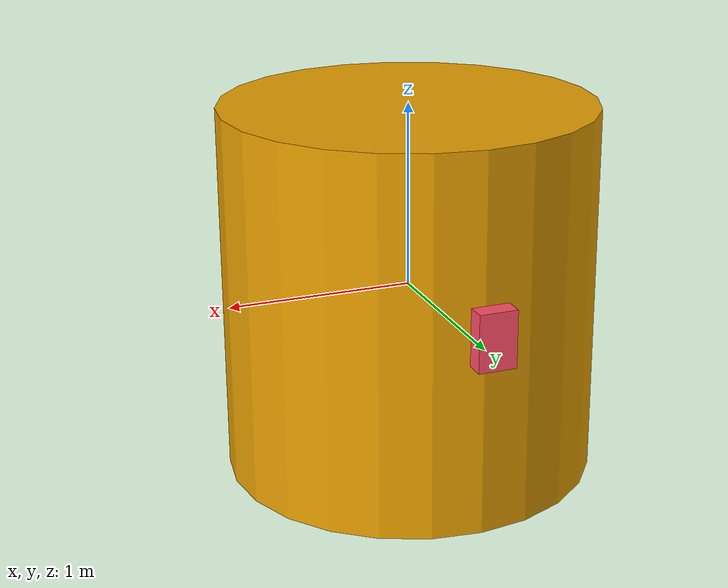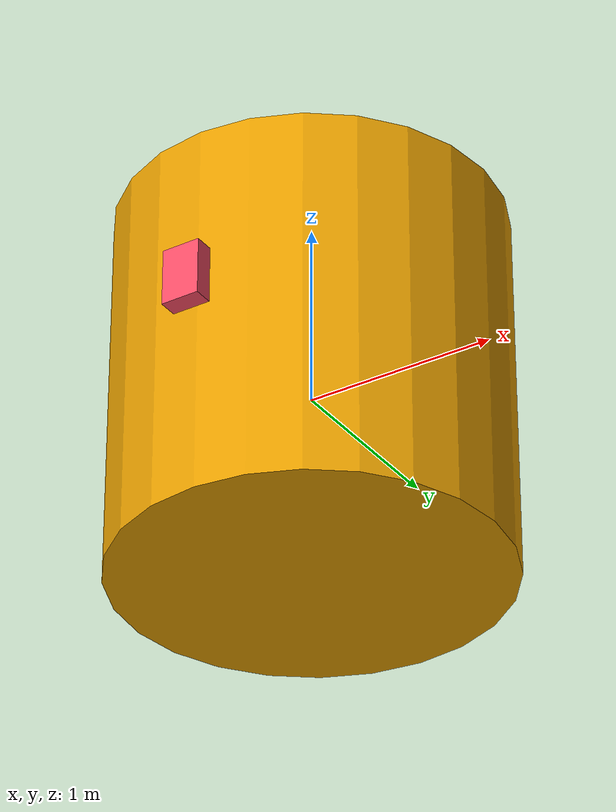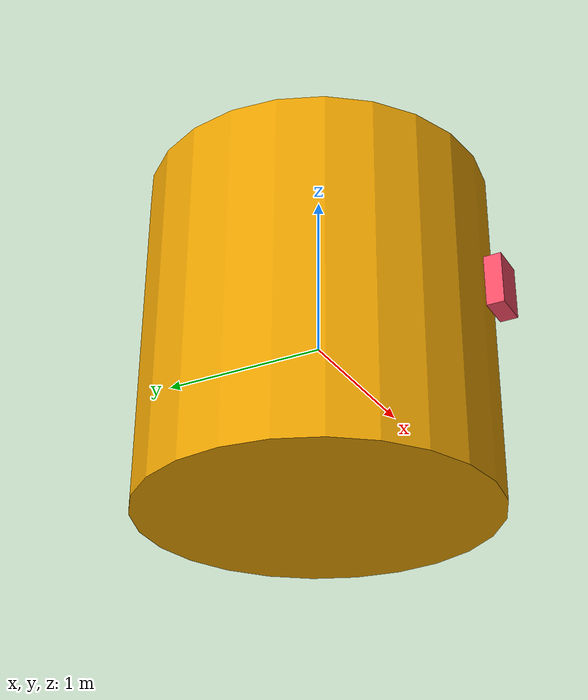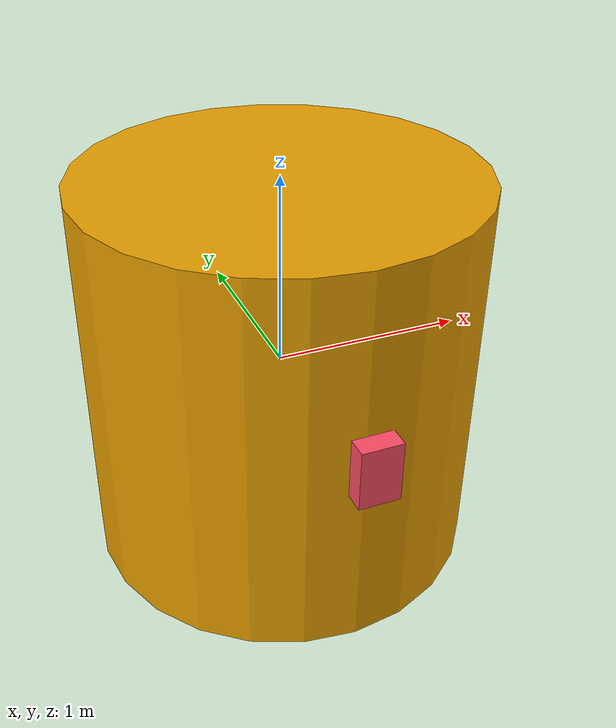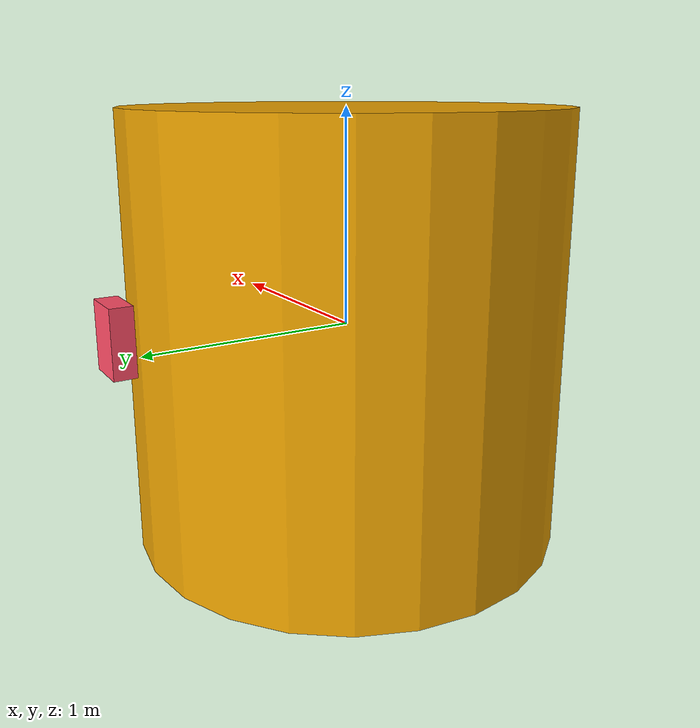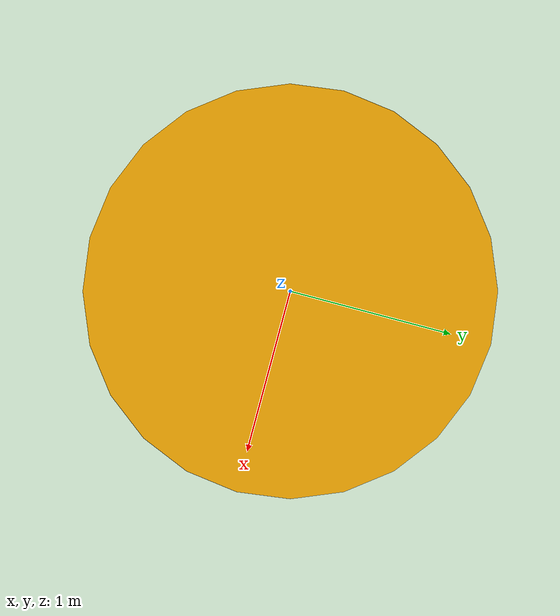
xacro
<?xml version="1.0"?>
<robot name="hermes" xmlns:xacro="http://www.ros.org/wiki/xacro">
    <material name="orange">
        <color rgba="1 0.3 0.4 1" />
    </material>
    <xacro:property name="radius" value="1.0" />
    <xacro:property name="leglen" value="0.3" />
    <link name="base_link">
        <visual>
            <geometry>
                <cylinder length="2.0" radius="${radius}"/>
            </geometry>
        </visual>
    </link>
    <xacro:macro name="leg" params="prefix orientation">
        <link name="${prefix}_leg">
            <visual>
                <geometry>
                    <box size="${leglen} 0.1 0.2" />
                </geometry>
                <origin xyz="0 0 -${leglen/2}" rpy="0 ${pi/2} 0"/>
                <material name="orange"/>
            </visual>

        </link>
        <joint name="base_to_${prefix}_leg" type="continuous">
            <parent link="base_link" />
            <child link="${prefix}_leg" />
            <origin xyz="0 ${orientation*(radius+0.1)} 0.25" />
            <axis xyz="0 1 0"/>
        </joint>
    </xacro:macro >
    <xacro:leg prefix="right" orientation="1"/>
    <xacro:leg prefix="left" orientation="-1"/>
</robot>
